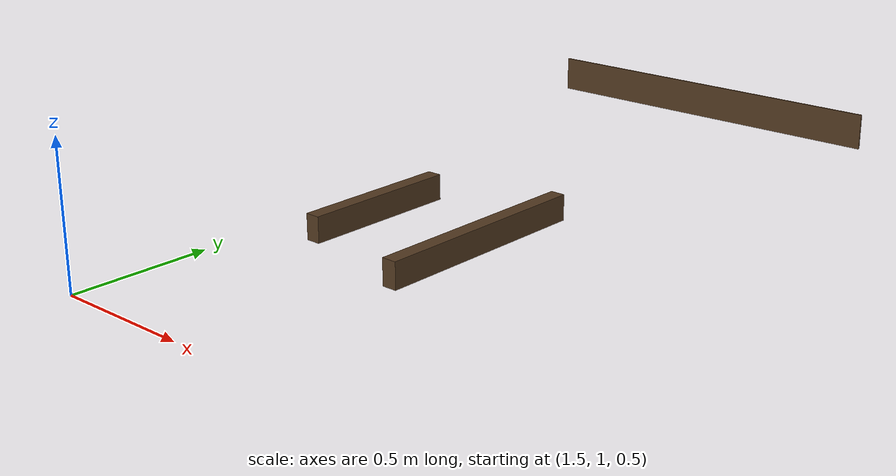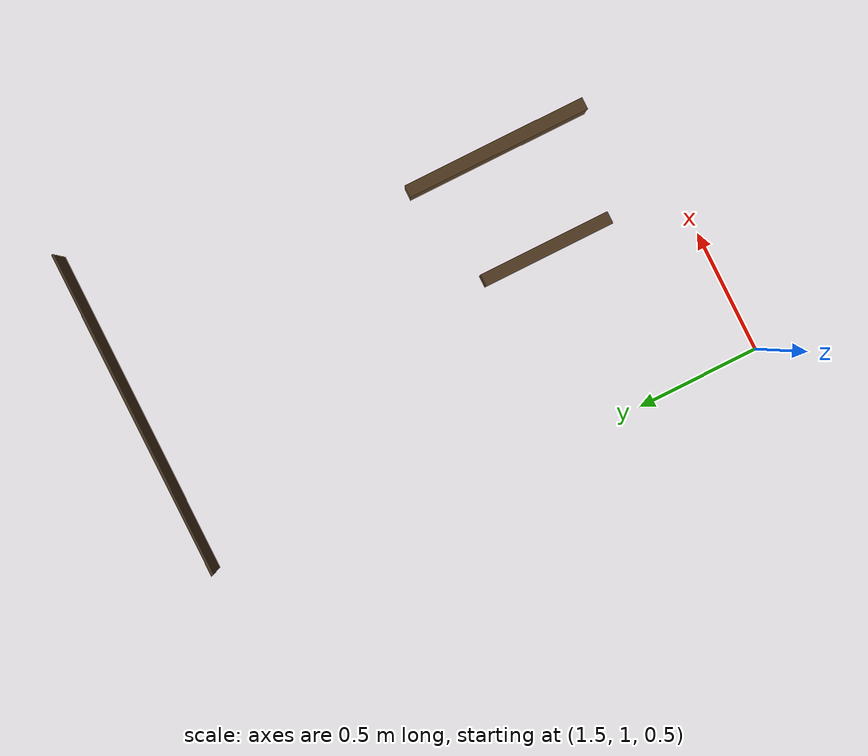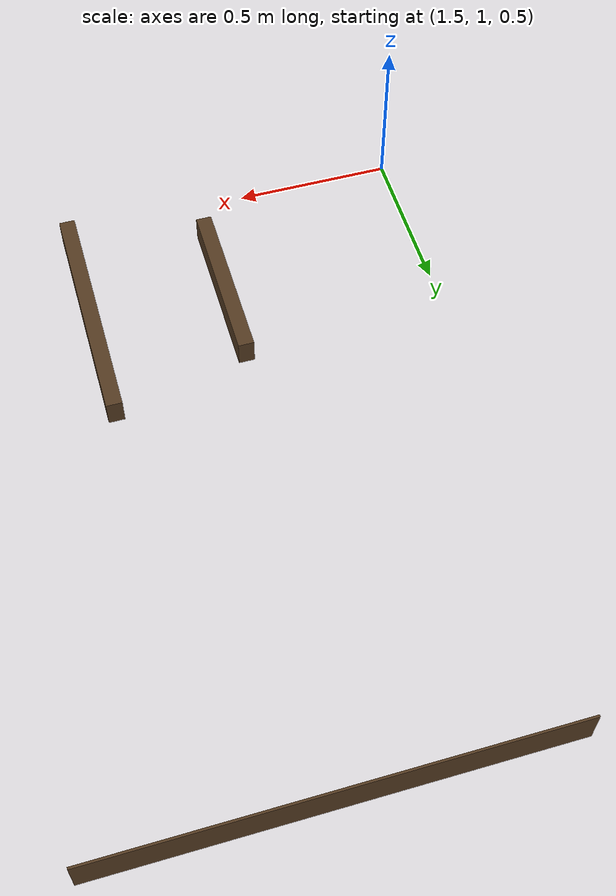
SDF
<sdf version="1.6">
 <world name="crawlspace">
  <model name="damaged_wood">
   <static>true</static>
   <link name="link">
    <visual name="damage_0">
     <pose>2.6 1.6 0.787 0 0 0</pose>
     <geometry><box><size>0.046 0.7 0.08</size></box></geometry>
     <material>
      <ambient>0.33 0.23 0.13 1</ambient>
      <diffuse>0.33 0.23 0.13 1</diffuse>
      <specular>0.05 0.05 0.05 1</specular>
     </material>
    </visual>
    <visual name="damage_1">
     <pose>2.2 1.6 0.787 0 0 0</pose>
     <geometry><box><size>0.046 0.5 0.08</size></box></geometry>
     <material>
      <ambient>0.33 0.23 0.13 1</ambient>
      <diffuse>0.33 0.23 0.13 1</diffuse>
      <specular>0.05 0.05 0.05 1</specular>
     </material>
    </visual>
    <visual name="damage_2">
     <pose>2.325 3.157 0.81 0 0 0</pose>
     <geometry><box><size>1.25 0.006 0.12</size></box></geometry>
     <material>
      <ambient>0.33 0.23 0.13 1</ambient>
      <diffuse>0.33 0.23 0.13 1</diffuse>
      <specular>0.05 0.05 0.05 1</specular>
     </material>
    </visual>
   </link>
  </model>
 </world>
</sdf>
